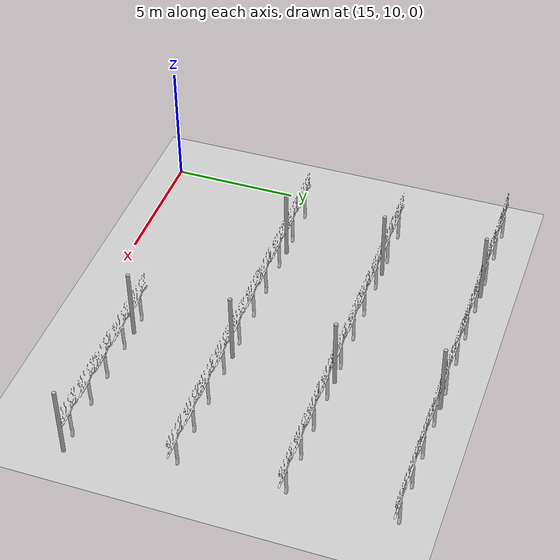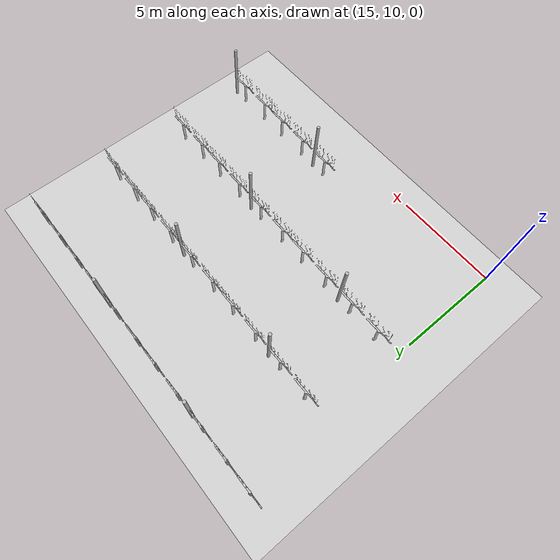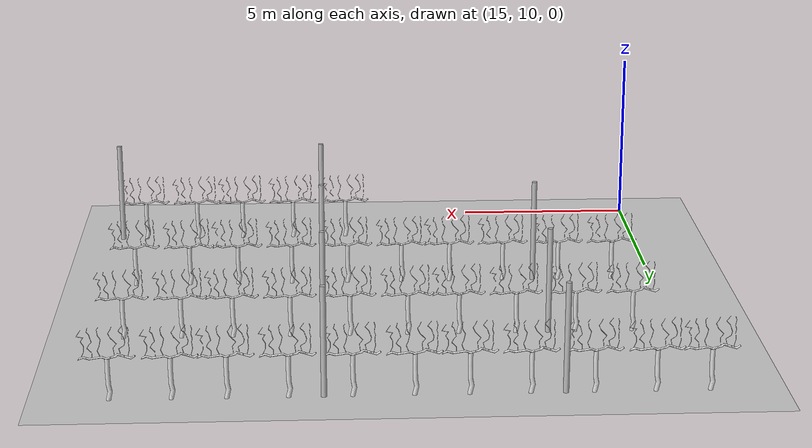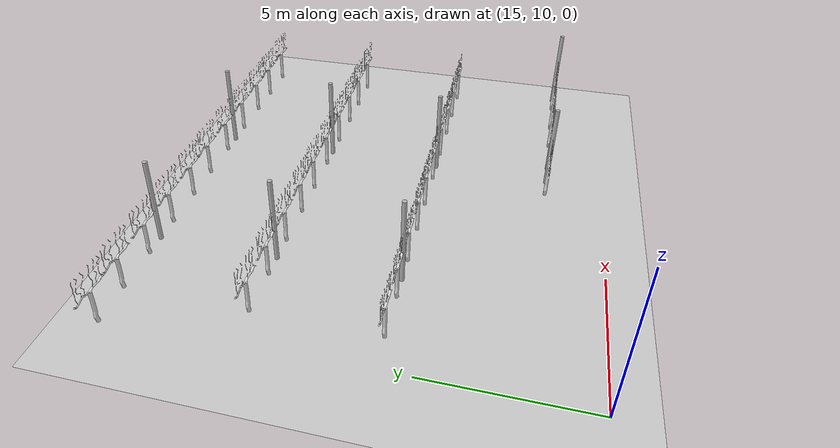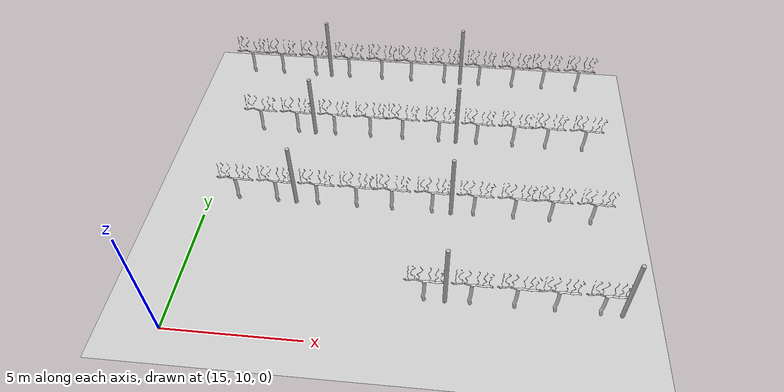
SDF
<sdf version="1.7">
 <world name="default">
  <model name="ground_plane">
   <static>true</static>
   <link name="link">
    <collision name="collision">
     <geometry><plane><normal>0 0 1</normal><size>100 100</size></plane></geometry>
    </collision>
    <visual name="visual"><geometry><plane><normal>0 0 1</normal><size>100 100</size></plane></geometry></visual>
   </link>
  </model>
  <model name="vinya_4_palo_4_fila_4">
   <static>true</static>
   <pose>23.914999999999996 12.0 0 0 0 0</pose>
   <link name="link">
    <collision name="collision">
     <geometry><mesh><uri>file://models/vinya/meshes/vinya.dae</uri></mesh></geometry>
    </collision>
    <visual name="visual">
     <geometry><mesh><uri>file://models/vinya/meshes/vinya.dae</uri></mesh></geometry>
    </visual>
   </link>
  </model>
  <model name="unit_cylinder_fila_4_palo_5">
   <static>true</static>
   <pose>24.639999999999997 12.0 1.5 0 0 0</pose>
   <link name="link">
    <collision name="collision">
     <geometry><cylinder><radius>0.075</radius><length>3</length></cylinder></geometry>
    </collision>
    <visual name="visual">
     <geometry><cylinder><radius>0.075</radius><length>3</length></cylinder></geometry>
    </visual>
   </link>
  </model>
  <model name="vinya_1_palo_5_fila_4">
   <static>true</static>
   <pose>25.539999999999996 12.0 0 0 0 0</pose>
   <link name="link">
    <collision name="collision">
     <geometry><mesh><uri>file://models/vinya/meshes/vinya.dae</uri></mesh></geometry>
    </collision>
    <visual name="visual">
     <geometry><mesh><uri>file://models/vinya/meshes/vinya.dae</uri></mesh></geometry>
    </visual>
   </link>
  </model>
  <model name="vinya_2_palo_5_fila_4">
   <static>true</static>
   <pose>27.099999999999994 12.0 0 0 0 0</pose>
   <link name="link">
    <collision name="collision">
     <geometry><mesh><uri>file://models/vinya/meshes/vinya.dae</uri></mesh></geometry>
    </collision>
    <visual name="visual">
     <geometry><mesh><uri>file://models/vinya/meshes/vinya.dae</uri></mesh></geometry>
    </visual>
   </link>
  </model>
  <model name="vinya_3_palo_5_fila_4">
   <static>true</static>
   <pose>28.499999999999993 12.0 0 0 0 0</pose>
   <link name="link">
    <collision name="collision">
     <geometry><mesh><uri>file://models/vinya/meshes/vinya.dae</uri></mesh></geometry>
    </collision>
    <visual name="visual">
     <geometry><mesh><uri>file://models/vinya/meshes/vinya.dae</uri></mesh></geometry>
    </visual>
   </link>
  </model>
  <model name="vinya_4_palo_5_fila_4">
   <static>true</static>
   <pose>30.074999999999992 12.0 0 0 0 0</pose>
   <link name="link">
    <collision name="collision">
     <geometry><mesh><uri>file://models/vinya/meshes/vinya.dae</uri></mesh></geometry>
    </collision>
    <visual name="visual">
     <geometry><mesh><uri>file://models/vinya/meshes/vinya.dae</uri></mesh></geometry>
    </visual>
   </link>
  </model>
  <model name="unit_cylinder_fila_4_palo_6">
   <static>true</static>
   <pose>30.799999999999994 12.0 1.5 0 0 0</pose>
   <link name="link">
    <collision name="collision">
     <geometry><cylinder><radius>0.075</radius><length>3</length></cylinder></geometry>
    </collision>
    <visual name="visual">
     <geometry><cylinder><radius>0.075</radius><length>3</length></cylinder></geometry>
    </visual>
   </link>
  </model>
  <model name="vinya_3_palo_3_fila_5">
   <static>true</static>
   <pose>16.18 16.0 0 0 0 0</pose>
   <link name="link">
    <collision name="collision">
     <geometry><mesh><uri>file://models/vinya/meshes/vinya.dae</uri></mesh></geometry>
    </collision>
    <visual name="visual">
     <geometry><mesh><uri>file://models/vinya/meshes/vinya.dae</uri></mesh></geometry>
    </visual>
   </link>
  </model>
  <model name="vinya_4_palo_3_fila_5">
   <static>true</static>
   <pose>17.755 16.0 0 0 0 0</pose>
   <link name="link">
    <collision name="collision">
     <geometry><mesh><uri>file://models/vinya/meshes/vinya.dae</uri></mesh></geometry>
    </collision>
    <visual name="visual">
     <geometry><mesh><uri>file://models/vinya/meshes/vinya.dae</uri></mesh></geometry>
    </visual>
   </link>
  </model>
  <model name="unit_cylinder_fila_5_palo_4">
   <static>true</static>
   <pose>18.48 16.0 1.5 0 0 0</pose>
   <link name="link">
    <collision name="collision">
     <geometry><cylinder><radius>0.075</radius><length>3</length></cylinder></geometry>
    </collision>
    <visual name="visual">
     <geometry><cylinder><radius>0.075</radius><length>3</length></cylinder></geometry>
    </visual>
   </link>
  </model>
  <model name="vinya_1_palo_4_fila_5">
   <static>true</static>
   <pose>19.38 16.0 0 0 0 0</pose>
   <link name="link">
    <collision name="collision">
     <geometry><mesh><uri>file://models/vinya/meshes/vinya.dae</uri></mesh></geometry>
    </collision>
    <visual name="visual">
     <geometry><mesh><uri>file://models/vinya/meshes/vinya.dae</uri></mesh></geometry>
    </visual>
   </link>
  </model>
  <model name="vinya_2_palo_4_fila_5">
   <static>true</static>
   <pose>20.939999999999998 16.0 0 0 0 0</pose>
   <link name="link">
    <collision name="collision">
     <geometry><mesh><uri>file://models/vinya/meshes/vinya.dae</uri></mesh></geometry>
    </collision>
    <visual name="visual">
     <geometry><mesh><uri>file://models/vinya/meshes/vinya.dae</uri></mesh></geometry>
    </visual>
   </link>
  </model>
  <model name="vinya_3_palo_4_fila_5">
   <static>true</static>
   <pose>22.339999999999996 16.0 0 0 0 0</pose>
   <link name="link">
    <collision name="collision">
     <geometry><mesh><uri>file://models/vinya/meshes/vinya.dae</uri></mesh></geometry>
    </collision>
    <visual name="visual">
     <geometry><mesh><uri>file://models/vinya/meshes/vinya.dae</uri></mesh></geometry>
    </visual>
   </link>
  </model>
  <model name="vinya_4_palo_4_fila_5">
   <static>true</static>
   <pose>23.914999999999996 16.0 0 0 0 0</pose>
   <link name="link">
    <collision name="collision">
     <geometry><mesh><uri>file://models/vinya/meshes/vinya.dae</uri></mesh></geometry>
    </collision>
    <visual name="visual">
     <geometry><mesh><uri>file://models/vinya/meshes/vinya.dae</uri></mesh></geometry>
    </visual>
   </link>
  </model>
  <model name="unit_cylinder_fila_5_palo_5">
   <static>true</static>
   <pose>24.639999999999997 16.0 1.5 0 0 0</pose>
   <link name="link">
    <collision name="collision">
     <geometry><cylinder><radius>0.075</radius><length>3</length></cylinder></geometry>
    </collision>
    <visual name="visual">
     <geometry><cylinder><radius>0.075</radius><length>3</length></cylinder></geometry>
    </visual>
   </link>
  </model>
  <model name="vinya_1_palo_5_fila_5">
   <static>true</static>
   <pose>25.539999999999996 16.0 0 0 0 0</pose>
   <link name="link">
    <collision name="collision">
     <geometry><mesh><uri>file://models/vinya/meshes/vinya.dae</uri></mesh></geometry>
    </collision>
    <visual name="visual">
     <geometry><mesh><uri>file://models/vinya/meshes/vinya.dae</uri></mesh></geometry>
    </visual>
   </link>
  </model>
  <model name="vinya_2_palo_5_fila_5">
   <static>true</static>
   <pose>27.099999999999994 16.0 0 0 0 0</pose>
   <link name="link">
    <collision name="collision">
     <geometry><mesh><uri>file://models/vinya/meshes/vinya.dae</uri></mesh></geometry>
    </collision>
    <visual name="visual">
     <geometry><mesh><uri>file://models/vinya/meshes/vinya.dae</uri></mesh></geometry>
    </visual>
   </link>
  </model>
  <model name="vinya_3_palo_5_fila_5">
   <static>true</static>
   <pose>28.499999999999993 16.0 0 0 0 0</pose>
   <link name="link">
    <collision name="collision">
     <geometry><mesh><uri>file://models/vinya/meshes/vinya.dae</uri></mesh></geometry>
    </collision>
    <visual name="visual">
     <geometry><mesh><uri>file://models/vinya/meshes/vinya.dae</uri></mesh></geometry>
    </visual>
   </link>
  </model>
  <model name="vinya_4_palo_5_fila_5">
   <static>true</static>
   <pose>30.074999999999992 16.0 0 0 0 0</pose>
   <link name="link">
    <collision name="collision">
     <geometry><mesh><uri>file://models/vinya/meshes/vinya.dae</uri></mesh></geometry>
    </collision>
    <visual name="visual">
     <geometry><mesh><uri>file://models/vinya/meshes/vinya.dae</uri></mesh></geometry>
    </visual>
   </link>
  </model>
  <model name="vinya_3_palo_3_fila_6">
   <static>true</static>
   <pose>16.18 20.0 0 0 0 0</pose>
   <link name="link">
    <collision name="collision">
     <geometry><mesh><uri>file://models/vinya/meshes/vinya.dae</uri></mesh></geometry>
    </collision>
    <visual name="visual">
     <geometry><mesh><uri>file://models/vinya/meshes/vinya.dae</uri></mesh></geometry>
    </visual>
   </link>
  </model>
  <model name="vinya_4_palo_3_fila_6">
   <static>true</static>
   <pose>17.755 20.0 0 0 0 0</pose>
   <link name="link">
    <collision name="collision">
     <geometry><mesh><uri>file://models/vinya/meshes/vinya.dae</uri></mesh></geometry>
    </collision>
    <visual name="visual">
     <geometry><mesh><uri>file://models/vinya/meshes/vinya.dae</uri></mesh></geometry>
    </visual>
   </link>
  </model>
  <model name="unit_cylinder_fila_6_palo_4">
   <static>true</static>
   <pose>18.48 20.0 1.5 0 0 0</pose>
   <link name="link">
    <collision name="collision">
     <geometry><cylinder><radius>0.075</radius><length>3</length></cylinder></geometry>
    </collision>
    <visual name="visual">
     <geometry><cylinder><radius>0.075</radius><length>3</length></cylinder></geometry>
    </visual>
   </link>
  </model>
  <model name="vinya_1_palo_4_fila_6">
   <static>true</static>
   <pose>19.38 20.0 0 0 0 0</pose>
   <link name="link">
    <collision name="collision">
     <geometry><mesh><uri>file://models/vinya/meshes/vinya.dae</uri></mesh></geometry>
    </collision>
    <visual name="visual">
     <geometry><mesh><uri>file://models/vinya/meshes/vinya.dae</uri></mesh></geometry>
    </visual>
   </link>
  </model>
  <model name="vinya_2_palo_4_fila_6">
   <static>true</static>
   <pose>20.939999999999998 20.0 0 0 0 0</pose>
   <link name="link">
    <collision name="collision">
     <geometry><mesh><uri>file://models/vinya/meshes/vinya.dae</uri></mesh></geometry>
    </collision>
    <visual name="visual">
     <geometry><mesh><uri>file://models/vinya/meshes/vinya.dae</uri></mesh></geometry>
    </visual>
   </link>
  </model>
  <model name="vinya_3_palo_4_fila_6">
   <static>true</static>
   <pose>22.339999999999996 20.0 0 0 0 0</pose>
   <link name="link">
    <collision name="collision">
     <geometry><mesh><uri>file://models/vinya/meshes/vinya.dae</uri></mesh></geometry>
    </collision>
    <visual name="visual">
     <geometry><mesh><uri>file://models/vinya/meshes/vinya.dae</uri></mesh></geometry>
    </visual>
   </link>
  </model>
  <model name="vinya_4_palo_4_fila_6">
   <static>true</static>
   <pose>23.914999999999996 20.0 0 0 0 0</pose>
   <link name="link">
    <collision name="collision">
     <geometry><mesh><uri>file://models/vinya/meshes/vinya.dae</uri></mesh></geometry>
    </collision>
    <visual name="visual">
     <geometry><mesh><uri>file://models/vinya/meshes/vinya.dae</uri></mesh></geometry>
    </visual>
   </link>
  </model>
  <model name="unit_cylinder_fila_6_palo_5">
   <static>true</static>
   <pose>24.639999999999997 20.0 1.5 0 0 0</pose>
   <link name="link">
    <collision name="collision">
     <geometry><cylinder><radius>0.075</radius><length>3</length></cylinder></geometry>
    </collision>
    <visual name="visual">
     <geometry><cylinder><radius>0.075</radius><length>3</length></cylinder></geometry>
    </visual>
   </link>
  </model>
  <model name="vinya_1_palo_5_fila_6">
   <static>true</static>
   <pose>25.539999999999996 20.0 0 0 0 0</pose>
   <link name="link">
    <collision name="collision">
     <geometry><mesh><uri>file://models/vinya/meshes/vinya.dae</uri></mesh></geometry>
    </collision>
    <visual name="visual">
     <geometry><mesh><uri>file://models/vinya/meshes/vinya.dae</uri></mesh></geometry>
    </visual>
   </link>
  </model>
  <model name="vinya_2_palo_5_fila_6">
   <static>true</static>
   <pose>27.099999999999994 20.0 0 0 0 0</pose>
   <link name="link">
    <collision name="collision">
     <geometry><mesh><uri>file://models/vinya/meshes/vinya.dae</uri></mesh></geometry>
    </collision>
    <visual name="visual">
     <geometry><mesh><uri>file://models/vinya/meshes/vinya.dae</uri></mesh></geometry>
    </visual>
   </link>
  </model>
  <model name="vinya_3_palo_5_fila_6">
   <static>true</static>
   <pose>28.499999999999993 20.0 0 0 0 0</pose>
   <link name="link">
    <collision name="collision">
     <geometry><mesh><uri>file://models/vinya/meshes/vinya.dae</uri></mesh></geometry>
    </collision>
    <visual name="visual">
     <geometry><mesh><uri>file://models/vinya/meshes/vinya.dae</uri></mesh></geometry>
    </visual>
   </link>
  </model>
  <model name="vinya_4_palo_5_fila_6">
   <static>true</static>
   <pose>30.074999999999992 20.0 0 0 0 0</pose>
   <link name="link">
    <collision name="collision">
     <geometry><mesh><uri>file://models/vinya/meshes/vinya.dae</uri></mesh></geometry>
    </collision>
    <visual name="visual">
     <geometry><mesh><uri>file://models/vinya/meshes/vinya.dae</uri></mesh></geometry>
    </visual>
   </link>
  </model>
  <model name="vinya_2_palo_3_fila_7">
   <static>true</static>
   <pose>14.78 24.0 0 0 0 0</pose>
   <link name="link">
    <collision name="collision">
     <geometry><mesh><uri>file://models/vinya/meshes/vinya.dae</uri></mesh></geometry>
    </collision>
    <visual name="visual">
     <geometry><mesh><uri>file://models/vinya/meshes/vinya.dae</uri></mesh></geometry>
    </visual>
   </link>
  </model>
  <model name="vinya_3_palo_3_fila_7">
   <static>true</static>
   <pose>16.18 24.0 0 0 0 0</pose>
   <link name="link">
    <collision name="collision">
     <geometry><mesh><uri>file://models/vinya/meshes/vinya.dae</uri></mesh></geometry>
    </collision>
    <visual name="visual">
     <geometry><mesh><uri>file://models/vinya/meshes/vinya.dae</uri></mesh></geometry>
    </visual>
   </link>
  </model>
  <model name="vinya_4_palo_3_fila_7">
   <static>true</static>
   <pose>17.755 24.0 0 0 0 0</pose>
   <link name="link">
    <collision name="collision">
     <geometry><mesh><uri>file://models/vinya/meshes/vinya.dae</uri></mesh></geometry>
    </collision>
    <visual name="visual">
     <geometry><mesh><uri>file://models/vinya/meshes/vinya.dae</uri></mesh></geometry>
    </visual>
   </link>
  </model>
  <model name="unit_cylinder_fila_7_palo_4">
   <static>true</static>
   <pose>18.48 24.0 1.5 0 0 0</pose>
   <link name="link">
    <collision name="collision">
     <geometry><cylinder><radius>0.075</radius><length>3</length></cylinder></geometry>
    </collision>
    <visual name="visual">
     <geometry><cylinder><radius>0.075</radius><length>3</length></cylinder></geometry>
    </visual>
   </link>
  </model>
  <model name="vinya_1_palo_4_fila_7">
   <static>true</static>
   <pose>19.38 24.0 0 0 0 0</pose>
   <link name="link">
    <collision name="collision">
     <geometry><mesh><uri>file://models/vinya/meshes/vinya.dae</uri></mesh></geometry>
    </collision>
    <visual name="visual">
     <geometry><mesh><uri>file://models/vinya/meshes/vinya.dae</uri></mesh></geometry>
    </visual>
   </link>
  </model>
  <model name="vinya_2_palo_4_fila_7">
   <static>true</static>
   <pose>20.939999999999998 24.0 0 0 0 0</pose>
   <link name="link">
    <collision name="collision">
     <geometry><mesh><uri>file://models/vinya/meshes/vinya.dae</uri></mesh></geometry>
    </collision>
    <visual name="visual">
     <geometry><mesh><uri>file://models/vinya/meshes/vinya.dae</uri></mesh></geometry>
    </visual>
   </link>
  </model>
  <model name="vinya_3_palo_4_fila_7">
   <static>true</static>
   <pose>22.339999999999996 24.0 0 0 0 0</pose>
   <link name="link">
    <collision name="collision">
     <geometry><mesh><uri>file://models/vinya/meshes/vinya.dae</uri></mesh></geometry>
    </collision>
    <visual name="visual">
     <geometry><mesh><uri>file://models/vinya/meshes/vinya.dae</uri></mesh></geometry>
    </visual>
   </link>
  </model>
  <model name="vinya_4_palo_4_fila_7">
   <static>true</static>
   <pose>23.914999999999996 24.0 0 0 0 0</pose>
   <link name="link">
    <collision name="collision">
     <geometry><mesh><uri>file://models/vinya/meshes/vinya.dae</uri></mesh></geometry>
    </collision>
    <visual name="visual">
     <geometry><mesh><uri>file://models/vinya/meshes/vinya.dae</uri></mesh></geometry>
    </visual>
   </link>
  </model>
  <model name="unit_cylinder_fila_7_palo_5">
   <static>true</static>
   <pose>24.639999999999997 24.0 1.5 0 0 0</pose>
   <link name="link">
    <collision name="collision">
     <geometry><cylinder><radius>0.075</radius><length>3</length></cylinder></geometry>
    </collision>
    <visual name="visual">
     <geometry><cylinder><radius>0.075</radius><length>3</length></cylinder></geometry>
    </visual>
   </link>
  </model>
  <model name="vinya_1_palo_5_fila_7">
   <static>true</static>
   <pose>25.539999999999996 24.0 0 0 0 0</pose>
   <link name="link">
    <collision name="collision">
     <geometry><mesh><uri>file://models/vinya/meshes/vinya.dae</uri></mesh></geometry>
    </collision>
    <visual name="visual">
     <geometry><mesh><uri>file://models/vinya/meshes/vinya.dae</uri></mesh></geometry>
    </visual>
   </link>
  </model>
  <model name="vinya_2_palo_5_fila_7">
   <static>true</static>
   <pose>27.099999999999994 24.0 0 0 0 0</pose>
   <link name="link">
    <collision name="collision">
     <geometry><mesh><uri>file://models/vinya/meshes/vinya.dae</uri></mesh></geometry>
    </collision>
    <visual name="visual">
     <geometry><mesh><uri>file://models/vinya/meshes/vinya.dae</uri></mesh></geometry>
    </visual>
   </link>
  </model>
  <model name="vinya_3_palo_5_fila_7">
   <static>true</static>
   <pose>28.499999999999993 24.0 0 0 0 0</pose>
   <link name="link">
    <collision name="collision">
     <geometry><mesh><uri>file://models/vinya/meshes/vinya.dae</uri></mesh></geometry>
    </collision>
    <visual name="visual">
     <geometry><mesh><uri>file://models/vinya/meshes/vinya.dae</uri></mesh></geometry>
    </visual>
   </link>
  </model>
  <model name="vinya_4_palo_5_fila_7">
   <static>true</static>
   <pose>30.074999999999992 24.0 0 0 0 0</pose>
   <link name="link">
    <collision name="collision">
     <geometry><mesh><uri>file://models/vinya/meshes/vinya.dae</uri></mesh></geometry>
    </collision>
    <visual name="visual">
     <geometry><mesh><uri>file://models/vinya/meshes/vinya.dae</uri></mesh></geometry>
    </visual>
   </link>
  </model>
 </world>
</sdf>
